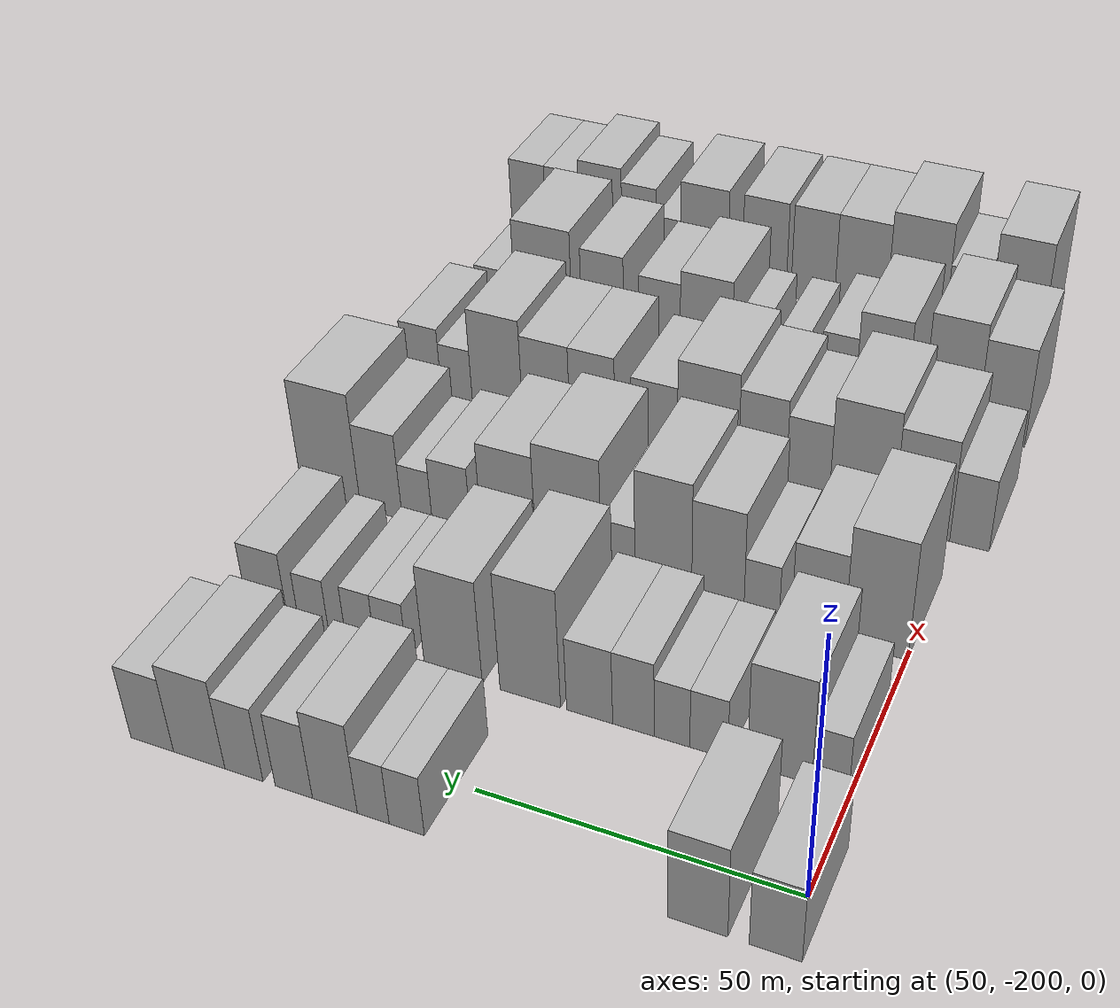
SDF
<sdf version="1.6">
 <world name="default">
  <model name="building_35">
   <static>1</static>
   <pose>50.0000 -198.8769 0 0.000000 0.000000 0.000000</pose>
   <link name="link">
    <pose>0 0 7.50 0 0 0</pose>
    <collision name="collision"><geometry><box><size>20.0000 7.3823 15.0000</size></box></geometry></collision>
    <visual name="visual">
     <cast_shadows>0</cast_shadows>
     <geometry><box><size>20.0000 7.3823 15.0000</size></box></geometry>
     <material>
      <script>
       <uri>model://HANNAS_wall/materials/scripts</uri>
       <uri>model://HANNAS_wall/materials/textures</uri>
       <name>vrc/HANNAS_wall</name>
      </script>
     </material>
    </visual>
   </link>
  </model>
  <model name="building_36">
   <static>1</static>
   <pose>50.0000 -187.9072 0 0.000000 0.000000 0.000000</pose>
   <link name="link">
    <pose>0 0 9.00 0 0 0</pose>
    <collision name="collision"><geometry><box><size>20.0000 8.5571 18.0000</size></box></geometry></collision>
    <visual name="visual">
     <cast_shadows>0</cast_shadows>
     <geometry><box><size>20.0000 8.5571 18.0000</size></box></geometry>
     <material>
      <script>
       <uri>model://HANNAS_wall/materials/scripts</uri>
       <uri>model://HANNAS_wall/materials/textures</uri>
       <name>vrc/HANNAS_wall</name>
      </script>
     </material>
    </visual>
   </link>
  </model>
  <model name="building_37">
   <static>1</static>
   <pose>50.0000 -144.2730 0 0.000000 0.000000 0.000000</pose>
   <link name="link">
    <pose>0 0 6.00 0 0 0</pose>
    <collision name="collision"><geometry><box><size>20.0000 5.5705 12.0000</size></box></geometry></collision>
    <visual name="visual">
     <cast_shadows>0</cast_shadows>
     <geometry><box><size>20.0000 5.5705 12.0000</size></box></geometry>
     <material>
      <script>
       <uri>model://HANNAS_wall/materials/scripts</uri>
       <uri>model://HANNAS_wall/materials/textures</uri>
       <name>vrc/HANNAS_wall</name>
      </script>
     </material>
    </visual>
   </link>
  </model>
  <model name="building_38">
   <static>1</static>
   <pose>50.0000 -138.9354 0 0.000000 0.000000 0.000000</pose>
   <link name="link">
    <pose>0 0 6.00 0 0 0</pose>
    <collision name="collision"><geometry><box><size>20.0000 5.1046 12.0000</size></box></geometry></collision>
    <visual name="visual">
     <cast_shadows>0</cast_shadows>
     <geometry><box><size>20.0000 5.1046 12.0000</size></box></geometry>
     <material>
      <script>
       <uri>model://HANNAS_wall/materials/scripts</uri>
       <uri>model://HANNAS_wall/materials/textures</uri>
       <name>vrc/HANNAS_wall</name>
      </script>
     </material>
    </visual>
   </link>
  </model>
  <model name="building_39">
   <static>1</static>
   <pose>50.0000 -132.7513 0 0.000000 0.000000 0.000000</pose>
   <link name="link">
    <pose>0 0 9.00 0 0 0</pose>
    <collision name="collision"><geometry><box><size>20.0000 7.2637 18.0000</size></box></geometry></collision>
    <visual name="visual">
     <cast_shadows>0</cast_shadows>
     <geometry><box><size>20.0000 7.2637 18.0000</size></box></geometry>
     <material>
      <script>
       <uri>model://HANNAS_wall/materials/scripts</uri>
       <uri>model://HANNAS_wall/materials/textures</uri>
       <name>vrc/HANNAS_wall</name>
      </script>
     </material>
    </visual>
   </link>
  </model>
  <model name="building_40">
   <static>1</static>
   <pose>50.0000 -126.0506 0 0.000000 0.000000 0.000000</pose>
   <link name="link">
    <pose>0 0 7.50 0 0 0</pose>
    <collision name="collision"><geometry><box><size>20.0000 6.1378 15.0000</size></box></geometry></collision>
    <visual name="visual">
     <cast_shadows>0</cast_shadows>
     <geometry><box><size>20.0000 6.1378 15.0000</size></box></geometry>
     <material>
      <script>
       <uri>model://HANNAS_wall/materials/scripts</uri>
       <uri>model://HANNAS_wall/materials/textures</uri>
       <name>vrc/HANNAS_wall</name>
      </script>
     </material>
    </visual>
   </link>
  </model>
  <model name="building_41">
   <static>1</static>
   <pose>50.0000 -117.7873 0 0.000000 0.000000 0.000000</pose>
   <link name="link">
    <pose>0 0 7.50 0 0 0</pose>
    <collision name="collision"><geometry><box><size>20.0000 6.3888 15.0000</size></box></geometry></collision>
    <visual name="visual">
     <cast_shadows>0</cast_shadows>
     <geometry><box><size>20.0000 6.3888 15.0000</size></box></geometry>
     <material>
      <script>
       <uri>model://HANNAS_wall/materials/scripts</uri>
       <uri>model://HANNAS_wall/materials/textures</uri>
       <name>vrc/HANNAS_wall</name>
      </script>
     </material>
    </visual>
   </link>
  </model>
  <model name="building_42">
   <static>1</static>
   <pose>50.0000 -110.2151 0 0.000000 0.000000 0.000000</pose>
   <link name="link">
    <pose>0 0 9.00 0 0 0</pose>
    <collision name="collision"><geometry><box><size>20.0000 8.7557 18.0000</size></box></geometry></collision>
    <visual name="visual">
     <cast_shadows>0</cast_shadows>
     <geometry><box><size>20.0000 8.7557 18.0000</size></box></geometry>
     <material>
      <script>
       <uri>model://HANNAS_wall/materials/scripts</uri>
       <uri>model://HANNAS_wall/materials/textures</uri>
       <name>vrc/HANNAS_wall</name>
      </script>
     </material>
    </visual>
   </link>
  </model>
  <model name="building_43">
   <static>1</static>
   <pose>50.0000 -102.1446 0 0.000000 0.000000 0.000000</pose>
   <link name="link">
    <pose>0 0 7.50 0 0 0</pose>
    <collision name="collision"><geometry><box><size>20.0000 7.3853 15.0000</size></box></geometry></collision>
    <visual name="visual">
     <cast_shadows>0</cast_shadows>
     <geometry><box><size>20.0000 7.3853 15.0000</size></box></geometry>
     <material>
      <script>
       <uri>model://HANNAS_wall/materials/scripts</uri>
       <uri>model://HANNAS_wall/materials/textures</uri>
       <name>vrc/HANNAS_wall</name>
      </script>
     </material>
    </visual>
   </link>
  </model>
  <model name="building_141">
   <static>1</static>
   <pose>79.0000 -197.0301 0 0.000000 0.000000 0.000000</pose>
   <link name="link">
    <pose>0 0 6.00 0 0 0</pose>
    <collision name="collision"><geometry><box><size>20.0000 5.5464 12.0000</size></box></geometry></collision>
    <visual name="visual">
     <cast_shadows>0</cast_shadows>
     <geometry><box><size>20.0000 5.5464 12.0000</size></box></geometry>
     <material>
      <script>
       <uri>model://HANNAS_wall/materials/scripts</uri>
       <uri>model://HANNAS_wall/materials/textures</uri>
       <name>vrc/HANNAS_wall</name>
      </script>
     </material>
    </visual>
   </link>
  </model>
  <model name="building_142">
   <static>1</static>
   <pose>79.0000 -189.3438 0 0.000000 0.000000 0.000000</pose>
   <link name="link">
    <pose>0 0 10.50 0 0 0</pose>
    <collision name="collision"><geometry><box><size>20.0000 9.8264 21.0000</size></box></geometry></collision>
    <visual name="visual">
     <cast_shadows>0</cast_shadows>
     <geometry><box><size>20.0000 9.8264 21.0000</size></box></geometry>
     <material>
      <script>
       <uri>model://HANNAS_wall/materials/scripts</uri>
       <uri>model://HANNAS_wall/materials/textures</uri>
       <name>vrc/HANNAS_wall</name>
      </script>
     </material>
    </visual>
   </link>
  </model>
  <model name="building_143">
   <static>1</static>
   <pose>79.0000 -178.4650 0 0.000000 0.000000 0.000000</pose>
   <link name="link">
    <pose>0 0 6.00 0 0 0</pose>
    <collision name="collision"><geometry><box><size>20.0000 5.9310 12.0000</size></box></geometry></collision>
    <visual name="visual">
     <cast_shadows>0</cast_shadows>
     <geometry><box><size>20.0000 5.9310 12.0000</size></box></geometry>
     <material>
      <script>
       <uri>model://HANNAS_wall/materials/scripts</uri>
       <uri>model://HANNAS_wall/materials/textures</uri>
       <name>vrc/HANNAS_wall</name>
      </script>
     </material>
    </visual>
   </link>
  </model>
  <model name="building_144">
   <static>1</static>
   <pose>79.0000 -172.6783 0 0.000000 0.000000 0.000000</pose>
   <link name="link">
    <pose>0 0 6.00 0 0 0</pose>
    <collision name="collision"><geometry><box><size>20.0000 5.6424 12.0000</size></box></geometry></collision>
    <visual name="visual">
     <cast_shadows>0</cast_shadows>
     <geometry><box><size>20.0000 5.6424 12.0000</size></box></geometry>
     <material>
      <script>
       <uri>model://HANNAS_wall/materials/scripts</uri>
       <uri>model://HANNAS_wall/materials/textures</uri>
       <name>vrc/HANNAS_wall</name>
      </script>
     </material>
    </visual>
   </link>
  </model>
  <model name="building_145">
   <static>1</static>
   <pose>79.0000 -166.5329 0 0.000000 0.000000 0.000000</pose>
   <link name="link">
    <pose>0 0 7.50 0 0 0</pose>
    <collision name="collision"><geometry><box><size>20.0000 6.6484 15.0000</size></box></geometry></collision>
    <visual name="visual">
     <cast_shadows>0</cast_shadows>
     <geometry><box><size>20.0000 6.6484 15.0000</size></box></geometry>
     <material>
      <script>
       <uri>model://HANNAS_wall/materials/scripts</uri>
       <uri>model://HANNAS_wall/materials/textures</uri>
       <name>vrc/HANNAS_wall</name>
      </script>
     </material>
    </visual>
   </link>
  </model>
  <model name="building_146">
   <static>1</static>
   <pose>79.0000 -159.4603 0 0.000000 0.000000 0.000000</pose>
   <link name="link">
    <pose>0 0 7.50 0 0 0</pose>
    <collision name="collision"><geometry><box><size>20.0000 7.4969 15.0000</size></box></geometry></collision>
    <visual name="visual">
     <cast_shadows>0</cast_shadows>
     <geometry><box><size>20.0000 7.4969 15.0000</size></box></geometry>
     <material>
      <script>
       <uri>model://HANNAS_wall/materials/scripts</uri>
       <uri>model://HANNAS_wall/materials/textures</uri>
       <name>vrc/HANNAS_wall</name>
      </script>
     </material>
    </visual>
   </link>
  </model>
  <model name="building_147">
   <static>1</static>
   <pose>79.0000 -149.6871 0 0.000000 0.000000 0.000000</pose>
   <link name="link">
    <pose>0 0 12.00 0 0 0</pose>
    <collision name="collision"><geometry><box><size>20.0000 10.0494 24.0000</size></box></geometry></collision>
    <visual name="visual">
     <cast_shadows>0</cast_shadows>
     <geometry><box><size>20.0000 10.0494 24.0000</size></box></geometry>
     <material>
      <script>
       <uri>model://HANNAS_wall/materials/scripts</uri>
       <uri>model://HANNAS_wall/materials/textures</uri>
       <name>vrc/HANNAS_wall</name>
      </script>
     </material>
    </visual>
   </link>
  </model>
  <model name="building_148">
   <static>1</static>
   <pose>79.0000 -136.7443 0 0.000000 0.000000 0.000000</pose>
   <link name="link">
    <pose>0 0 10.50 0 0 0</pose>
    <collision name="collision"><geometry><box><size>20.0000 9.8362 21.0000</size></box></geometry></collision>
    <visual name="visual">
     <cast_shadows>0</cast_shadows>
     <geometry><box><size>20.0000 9.8362 21.0000</size></box></geometry>
     <material>
      <script>
       <uri>model://HANNAS_wall/materials/scripts</uri>
       <uri>model://HANNAS_wall/materials/textures</uri>
       <name>vrc/HANNAS_wall</name>
      </script>
     </material>
    </visual>
   </link>
  </model>
  <model name="building_149">
   <static>1</static>
   <pose>79.0000 -126.0733 0 0.000000 0.000000 0.000000</pose>
   <link name="link">
    <pose>0 0 6.00 0 0 0</pose>
    <collision name="collision"><geometry><box><size>20.0000 5.5059 12.0000</size></box></geometry></collision>
    <visual name="visual">
     <cast_shadows>0</cast_shadows>
     <geometry><box><size>20.0000 5.5059 12.0000</size></box></geometry>
     <material>
      <script>
       <uri>model://HANNAS_wall/materials/scripts</uri>
       <uri>model://HANNAS_wall/materials/textures</uri>
       <name>vrc/HANNAS_wall</name>
      </script>
     </material>
    </visual>
   </link>
  </model>
  <model name="building_150">
   <static>1</static>
   <pose>79.0000 -120.7283 0 0.000000 0.000000 0.000000</pose>
   <link name="link">
    <pose>0 0 6.00 0 0 0</pose>
    <collision name="collision"><geometry><box><size>20.0000 5.1842 12.0000</size></box></geometry></collision>
    <visual name="visual">
     <cast_shadows>0</cast_shadows>
     <geometry><box><size>20.0000 5.1842 12.0000</size></box></geometry>
     <material>
      <script>
       <uri>model://HANNAS_wall/materials/scripts</uri>
       <uri>model://HANNAS_wall/materials/textures</uri>
       <name>vrc/HANNAS_wall</name>
      </script>
     </material>
    </visual>
   </link>
  </model>
  <model name="building_151">
   <static>1</static>
   <pose>79.0000 -112.4727 0 0.000000 0.000000 0.000000</pose>
   <link name="link">
    <pose>0 0 6.00 0 0 0</pose>
    <collision name="collision"><geometry><box><size>20.0000 5.3269 12.0000</size></box></geometry></collision>
    <visual name="visual">
     <cast_shadows>0</cast_shadows>
     <geometry><box><size>20.0000 5.3269 12.0000</size></box></geometry>
     <material>
      <script>
       <uri>model://HANNAS_wall/materials/scripts</uri>
       <uri>model://HANNAS_wall/materials/textures</uri>
       <name>vrc/HANNAS_wall</name>
      </script>
     </material>
    </visual>
   </link>
  </model>
  <model name="building_152">
   <static>1</static>
   <pose>79.0000 -104.1199 0 0.000000 0.000000 0.000000</pose>
   <link name="link">
    <pose>0 0 7.50 0 0 0</pose>
    <collision name="collision"><geometry><box><size>20.0000 7.3788 15.0000</size></box></geometry></collision>
    <visual name="visual">
     <cast_shadows>0</cast_shadows>
     <geometry><box><size>20.0000 7.3788 15.0000</size></box></geometry>
     <material>
      <script>
       <uri>model://HANNAS_wall/materials/scripts</uri>
       <uri>model://HANNAS_wall/materials/textures</uri>
       <name>vrc/HANNAS_wall</name>
      </script>
     </material>
    </visual>
   </link>
  </model>
  <model name="building_259">
   <static>1</static>
   <pose>108.0000 -195.0807 0 0.000000 0.000000 0.000000</pose>
   <link name="link">
    <pose>0 0 12.00 0 0 0</pose>
    <collision name="collision"><geometry><box><size>20.0000 10.2910 24.0000</size></box></geometry></collision>
    <visual name="visual">
     <cast_shadows>0</cast_shadows>
     <geometry><box><size>20.0000 10.2910 24.0000</size></box></geometry>
     <material>
      <script>
       <uri>model://HANNAS_wall/materials/scripts</uri>
       <uri>model://HANNAS_wall/materials/textures</uri>
       <name>vrc/HANNAS_wall</name>
      </script>
     </material>
    </visual>
   </link>
  </model>
  <model name="building_260">
   <static>1</static>
   <pose>108.0000 -185.5974 0 0.000000 0.000000 0.000000</pose>
   <link name="link">
    <pose>0 0 9.00 0 0 0</pose>
    <collision name="collision"><geometry><box><size>20.0000 8.6754 18.0000</size></box></geometry></collision>
    <visual name="visual">
     <cast_shadows>0</cast_shadows>
     <geometry><box><size>20.0000 8.6754 18.0000</size></box></geometry>
     <material>
      <script>
       <uri>model://HANNAS_wall/materials/scripts</uri>
       <uri>model://HANNAS_wall/materials/textures</uri>
       <name>vrc/HANNAS_wall</name>
      </script>
     </material>
    </visual>
   </link>
  </model>
  <model name="building_261">
   <static>1</static>
   <pose>108.0000 -176.3083 0 0.000000 0.000000 0.000000</pose>
   <link name="link">
    <pose>0 0 6.00 0 0 0</pose>
    <collision name="collision"><geometry><box><size>20.0000 5.9028 12.0000</size></box></geometry></collision>
    <visual name="visual">
     <cast_shadows>0</cast_shadows>
     <geometry><box><size>20.0000 5.9028 12.0000</size></box></geometry>
     <material>
      <script>
       <uri>model://HANNAS_wall/materials/scripts</uri>
       <uri>model://HANNAS_wall/materials/textures</uri>
       <name>vrc/HANNAS_wall</name>
      </script>
     </material>
    </visual>
   </link>
  </model>
  <model name="building_262">
   <static>1</static>
   <pose>108.0000 -168.9257 0 0.000000 0.000000 0.000000</pose>
   <link name="link">
    <pose>0 0 10.50 0 0 0</pose>
    <collision name="collision"><geometry><box><size>20.0000 8.8624 21.0000</size></box></geometry></collision>
    <visual name="visual">
     <cast_shadows>0</cast_shadows>
     <geometry><box><size>20.0000 8.8624 21.0000</size></box></geometry>
     <material>
      <script>
       <uri>model://HANNAS_wall/materials/scripts</uri>
       <uri>model://HANNAS_wall/materials/textures</uri>
       <name>vrc/HANNAS_wall</name>
      </script>
     </material>
    </visual>
   </link>
  </model>
  <model name="building_263">
   <static>1</static>
   <pose>108.0000 -159.6231 0 0.000000 0.000000 0.000000</pose>
   <link name="link">
    <pose>0 0 12.00 0 0 0</pose>
    <collision name="collision"><geometry><box><size>20.0000 9.7428 24.0000</size></box></geometry></collision>
    <visual name="visual">
     <cast_shadows>0</cast_shadows>
     <geometry><box><size>20.0000 9.7428 24.0000</size></box></geometry>
     <material>
      <script>
       <uri>model://HANNAS_wall/materials/scripts</uri>
       <uri>model://HANNAS_wall/materials/textures</uri>
       <name>vrc/HANNAS_wall</name>
      </script>
     </material>
    </visual>
   </link>
  </model>
  <model name="building_264">
   <static>1</static>
   <pose>108.0000 -151.8217 0 0.000000 0.000000 0.000000</pose>
   <link name="link">
    <pose>0 0 6.00 0 0 0</pose>
    <collision name="collision"><geometry><box><size>20.0000 5.8601 12.0000</size></box></geometry></collision>
    <visual name="visual">
     <cast_shadows>0</cast_shadows>
     <geometry><box><size>20.0000 5.8601 12.0000</size></box></geometry>
     <material>
      <script>
       <uri>model://HANNAS_wall/materials/scripts</uri>
       <uri>model://HANNAS_wall/materials/textures</uri>
       <name>vrc/HANNAS_wall</name>
      </script>
     </material>
    </visual>
   </link>
  </model>
  <model name="building_265">
   <static>1</static>
   <pose>108.0000 -143.0457 0 0.000000 0.000000 0.000000</pose>
   <link name="link">
    <pose>0 0 12.00 0 0 0</pose>
    <collision name="collision"><geometry><box><size>20.0000 11.6918 24.0000</size></box></geometry></collision>
    <visual name="visual">
     <cast_shadows>0</cast_shadows>
     <geometry><box><size>20.0000 11.6918 24.0000</size></box></geometry>
     <material>
      <script>
       <uri>model://HANNAS_wall/materials/scripts</uri>
       <uri>model://HANNAS_wall/materials/textures</uri>
       <name>vrc/HANNAS_wall</name>
      </script>
     </material>
    </visual>
   </link>
  </model>
  <model name="building_266">
   <static>1</static>
   <pose>108.0000 -132.2541 0 0.000000 0.000000 0.000000</pose>
   <link name="link">
    <pose>0 0 10.50 0 0 0</pose>
    <collision name="collision"><geometry><box><size>20.0000 9.8915 21.0000</size></box></geometry></collision>
    <visual name="visual">
     <cast_shadows>0</cast_shadows>
     <geometry><box><size>20.0000 9.8915 21.0000</size></box></geometry>
     <material>
      <script>
       <uri>model://HANNAS_wall/materials/scripts</uri>
       <uri>model://HANNAS_wall/materials/textures</uri>
       <name>vrc/HANNAS_wall</name>
      </script>
     </material>
    </visual>
   </link>
  </model>
  <model name="building_267">
   <static>1</static>
   <pose>108.0000 -121.7147 0 0.000000 0.000000 0.000000</pose>
   <link name="link">
    <pose>0 0 7.50 0 0 0</pose>
    <collision name="collision"><geometry><box><size>20.0000 7.1872 15.0000</size></box></geometry></collision>
    <visual name="visual">
     <cast_shadows>0</cast_shadows>
     <geometry><box><size>20.0000 7.1872 15.0000</size></box></geometry>
     <material>
      <script>
       <uri>model://HANNAS_wall/materials/scripts</uri>
       <uri>model://HANNAS_wall/materials/textures</uri>
       <name>vrc/HANNAS_wall</name>
      </script>
     </material>
    </visual>
   </link>
  </model>
  <model name="building_268">
   <static>1</static>
   <pose>108.0000 -115.2483 0 0.000000 0.000000 0.000000</pose>
   <link name="link">
    <pose>0 0 6.00 0 0 0</pose>
    <collision name="collision"><geometry><box><size>20.0000 5.7456 12.0000</size></box></geometry></collision>
    <visual name="visual">
     <cast_shadows>0</cast_shadows>
     <geometry><box><size>20.0000 5.7456 12.0000</size></box></geometry>
     <material>
      <script>
       <uri>model://HANNAS_wall/materials/scripts</uri>
       <uri>model://HANNAS_wall/materials/textures</uri>
       <name>vrc/HANNAS_wall</name>
      </script>
     </material>
    </visual>
   </link>
  </model>
  <model name="building_269">
   <static>1</static>
   <pose>108.0000 -108.3788 0 0.000000 0.000000 0.000000</pose>
   <link name="link">
    <pose>0 0 9.00 0 0 0</pose>
    <collision name="collision"><geometry><box><size>20.0000 7.9934 18.0000</size></box></geometry></collision>
    <visual name="visual">
     <cast_shadows>0</cast_shadows>
     <geometry><box><size>20.0000 7.9934 18.0000</size></box></geometry>
     <material>
      <script>
       <uri>model://HANNAS_wall/materials/scripts</uri>
       <uri>model://HANNAS_wall/materials/textures</uri>
       <name>vrc/HANNAS_wall</name>
      </script>
     </material>
    </visual>
   </link>
  </model>
  <model name="building_270">
   <static>1</static>
   <pose>108.0000 -98.6892 0 0.000000 0.000000 0.000000</pose>
   <link name="link">
    <pose>0 0 12.00 0 0 0</pose>
    <collision name="collision"><geometry><box><size>20.0000 11.3859 24.0000</size></box></geometry></collision>
    <visual name="visual">
     <cast_shadows>0</cast_shadows>
     <geometry><box><size>20.0000 11.3859 24.0000</size></box></geometry>
     <material>
      <script>
       <uri>model://HANNAS_wall/materials/scripts</uri>
       <uri>model://HANNAS_wall/materials/textures</uri>
       <name>vrc/HANNAS_wall</name>
      </script>
     </material>
    </visual>
   </link>
  </model>
  <model name="building_379">
   <static>1</static>
   <pose>137.0000 -202.4666 0 0.000000 0.000000 0.000000</pose>
   <link name="link">
    <pose>0 0 7.50 0 0 0</pose>
    <collision name="collision"><geometry><box><size>20.0000 6.7038 15.0000</size></box></geometry></collision>
    <visual name="visual">
     <cast_shadows>0</cast_shadows>
     <geometry><box><size>20.0000 6.7038 15.0000</size></box></geometry>
     <material>
      <script>
       <uri>model://HANNAS_wall/materials/scripts</uri>
       <uri>model://HANNAS_wall/materials/textures</uri>
       <name>vrc/HANNAS_wall</name>
      </script>
     </material>
    </visual>
   </link>
  </model>
  <model name="building_380">
   <static>1</static>
   <pose>137.0000 -194.2477 0 0.000000 0.000000 0.000000</pose>
   <link name="link">
    <pose>0 0 10.50 0 0 0</pose>
    <collision name="collision"><geometry><box><size>20.0000 9.7340 21.0000</size></box></geometry></collision>
    <visual name="visual">
     <cast_shadows>0</cast_shadows>
     <geometry><box><size>20.0000 9.7340 21.0000</size></box></geometry>
     <material>
      <script>
       <uri>model://HANNAS_wall/materials/scripts</uri>
       <uri>model://HANNAS_wall/materials/textures</uri>
       <name>vrc/HANNAS_wall</name>
      </script>
     </material>
    </visual>
   </link>
  </model>
  <model name="building_381">
   <static>1</static>
   <pose>137.0000 -183.7086 0 0.000000 0.000000 0.000000</pose>
   <link name="link">
    <pose>0 0 12.00 0 0 0</pose>
    <collision name="collision"><geometry><box><size>20.0000 11.3443 24.0000</size></box></geometry></collision>
    <visual name="visual">
     <cast_shadows>0</cast_shadows>
     <geometry><box><size>20.0000 11.3443 24.0000</size></box></geometry>
     <material>
      <script>
       <uri>model://HANNAS_wall/materials/scripts</uri>
       <uri>model://HANNAS_wall/materials/textures</uri>
       <name>vrc/HANNAS_wall</name>
      </script>
     </material>
    </visual>
   </link>
  </model>
  <model name="building_382">
   <static>1</static>
   <pose>137.0000 -174.1762 0 0.000000 0.000000 0.000000</pose>
   <link name="link">
    <pose>0 0 9.00 0 0 0</pose>
    <collision name="collision"><geometry><box><size>20.0000 7.7205 18.0000</size></box></geometry></collision>
    <visual name="visual">
     <cast_shadows>0</cast_shadows>
     <geometry><box><size>20.0000 7.7205 18.0000</size></box></geometry>
     <material>
      <script>
       <uri>model://HANNAS_wall/materials/scripts</uri>
       <uri>model://HANNAS_wall/materials/textures</uri>
       <name>vrc/HANNAS_wall</name>
      </script>
     </material>
    </visual>
   </link>
  </model>
  <model name="building_383">
   <static>1</static>
   <pose>137.0000 -166.0308 0 0.000000 0.000000 0.000000</pose>
   <link name="link">
    <pose>0 0 10.50 0 0 0</pose>
    <collision name="collision"><geometry><box><size>20.0000 8.5702 21.0000</size></box></geometry></collision>
    <visual name="visual">
     <cast_shadows>0</cast_shadows>
     <geometry><box><size>20.0000 8.5702 21.0000</size></box></geometry>
     <material>
      <script>
       <uri>model://HANNAS_wall/materials/scripts</uri>
       <uri>model://HANNAS_wall/materials/textures</uri>
       <name>vrc/HANNAS_wall</name>
      </script>
     </material>
    </visual>
   </link>
  </model>
  <model name="building_384">
   <static>1</static>
   <pose>137.0000 -156.1632 0 0.000000 0.000000 0.000000</pose>
   <link name="link">
    <pose>0 0 12.00 0 0 0</pose>
    <collision name="collision"><geometry><box><size>20.0000 11.1650 24.0000</size></box></geometry></collision>
    <visual name="visual">
     <cast_shadows>0</cast_shadows>
     <geometry><box><size>20.0000 11.1650 24.0000</size></box></geometry>
     <material>
      <script>
       <uri>model://HANNAS_wall/materials/scripts</uri>
       <uri>model://HANNAS_wall/materials/textures</uri>
       <name>vrc/HANNAS_wall</name>
      </script>
     </material>
    </visual>
   </link>
  </model>
  <model name="building_385">
   <static>1</static>
   <pose>137.0000 -146.2747 0 0.000000 0.000000 0.000000</pose>
   <link name="link">
    <pose>0 0 9.00 0 0 0</pose>
    <collision name="collision"><geometry><box><size>20.0000 8.6120 18.0000</size></box></geometry></collision>
    <visual name="visual">
     <cast_shadows>0</cast_shadows>
     <geometry><box><size>20.0000 8.6120 18.0000</size></box></geometry>
     <material>
      <script>
       <uri>model://HANNAS_wall/materials/scripts</uri>
       <uri>model://HANNAS_wall/materials/textures</uri>
       <name>vrc/HANNAS_wall</name>
      </script>
     </material>
    </visual>
   </link>
  </model>
  <model name="building_386">
   <static>1</static>
   <pose>137.0000 -134.6522 0 0.000000 0.000000 0.000000</pose>
   <link name="link">
    <pose>0 0 10.50 0 0 0</pose>
    <collision name="collision"><geometry><box><size>20.0000 8.6332 21.0000</size></box></geometry></collision>
    <visual name="visual">
     <cast_shadows>0</cast_shadows>
     <geometry><box><size>20.0000 8.6332 21.0000</size></box></geometry>
     <material>
      <script>
       <uri>model://HANNAS_wall/materials/scripts</uri>
       <uri>model://HANNAS_wall/materials/textures</uri>
       <name>vrc/HANNAS_wall</name>
      </script>
     </material>
    </visual>
   </link>
  </model>
  <model name="building_387">
   <static>1</static>
   <pose>137.0000 -125.7567 0 0.000000 0.000000 0.000000</pose>
   <link name="link">
    <pose>0 0 10.50 0 0 0</pose>
    <collision name="collision"><geometry><box><size>20.0000 9.1576 21.0000</size></box></geometry></collision>
    <visual name="visual">
     <cast_shadows>0</cast_shadows>
     <geometry><box><size>20.0000 9.1576 21.0000</size></box></geometry>
     <material>
      <script>
       <uri>model://HANNAS_wall/materials/scripts</uri>
       <uri>model://HANNAS_wall/materials/textures</uri>
       <name>vrc/HANNAS_wall</name>
      </script>
     </material>
    </visual>
   </link>
  </model>
  <model name="building_388">
   <static>1</static>
   <pose>137.0000 -116.2139 0 0.000000 0.000000 0.000000</pose>
   <link name="link">
    <pose>0 0 12.00 0 0 0</pose>
    <collision name="collision"><geometry><box><size>20.0000 9.9280 24.0000</size></box></geometry></collision>
    <visual name="visual">
     <cast_shadows>0</cast_shadows>
     <geometry><box><size>20.0000 9.9280 24.0000</size></box></geometry>
     <material>
      <script>
       <uri>model://HANNAS_wall/materials/scripts</uri>
       <uri>model://HANNAS_wall/materials/textures</uri>
       <name>vrc/HANNAS_wall</name>
      </script>
     </material>
    </visual>
   </link>
  </model>
  <model name="building_389">
   <static>1</static>
   <pose>137.0000 -108.1686 0 0.000000 0.000000 0.000000</pose>
   <link name="link">
    <pose>0 0 7.50 0 0 0</pose>
    <collision name="collision"><geometry><box><size>20.0000 6.1628 15.0000</size></box></geometry></collision>
    <visual name="visual">
     <cast_shadows>0</cast_shadows>
     <geometry><box><size>20.0000 6.1628 15.0000</size></box></geometry>
     <material>
      <script>
       <uri>model://HANNAS_wall/materials/scripts</uri>
       <uri>model://HANNAS_wall/materials/textures</uri>
       <name>vrc/HANNAS_wall</name>
      </script>
     </material>
    </visual>
   </link>
  </model>
  <model name="building_390">
   <static>1</static>
   <pose>137.0000 -101.3444 0 0.000000 0.000000 0.000000</pose>
   <link name="link">
    <pose>0 0 9.00 0 0 0</pose>
    <collision name="collision"><geometry><box><size>20.0000 7.4856 18.0000</size></box></geometry></collision>
    <visual name="visual">
     <cast_shadows>0</cast_shadows>
     <geometry><box><size>20.0000 7.4856 18.0000</size></box></geometry>
     <material>
      <script>
       <uri>model://HANNAS_wall/materials/scripts</uri>
       <uri>model://HANNAS_wall/materials/textures</uri>
       <name>vrc/HANNAS_wall</name>
      </script>
     </material>
    </visual>
   </link>
  </model>
  <model name="building_495">
   <static>1</static>
   <pose>166.0000 -200.5444 0 0.000000 0.000000 0.000000</pose>
   <link name="link">
    <pose>0 0 10.50 0 0 0</pose>
    <collision name="collision"><geometry><box><size>20.0000 8.7756 21.0000</size></box></geometry></collision>
    <visual name="visual">
     <cast_shadows>0</cast_shadows>
     <geometry><box><size>20.0000 8.7756 21.0000</size></box></geometry>
     <material>
      <script>
       <uri>model://HANNAS_wall/materials/scripts</uri>
       <uri>model://HANNAS_wall/materials/textures</uri>
       <name>vrc/HANNAS_wall</name>
      </script>
     </material>
    </visual>
   </link>
  </model>
  <model name="building_496">
   <static>1</static>
   <pose>166.0000 -191.1851 0 0.000000 0.000000 0.000000</pose>
   <link name="link">
    <pose>0 0 12.00 0 0 0</pose>
    <collision name="collision"><geometry><box><size>20.0000 9.9430 24.0000</size></box></geometry></collision>
    <visual name="visual">
     <cast_shadows>0</cast_shadows>
     <geometry><box><size>20.0000 9.9430 24.0000</size></box></geometry>
     <material>
      <script>
       <uri>model://HANNAS_wall/materials/scripts</uri>
       <uri>model://HANNAS_wall/materials/textures</uri>
       <name>vrc/HANNAS_wall</name>
      </script>
     </material>
    </visual>
   </link>
  </model>
  <model name="building_497">
   <static>1</static>
   <pose>166.0000 -178.4160 0 0.000000 0.000000 0.000000</pose>
   <link name="link">
    <pose>0 0 10.50 0 0 0</pose>
    <collision name="collision"><geometry><box><size>20.0000 9.5953 21.0000</size></box></geometry></collision>
    <visual name="visual">
     <cast_shadows>0</cast_shadows>
     <geometry><box><size>20.0000 9.5953 21.0000</size></box></geometry>
     <material>
      <script>
       <uri>model://HANNAS_wall/materials/scripts</uri>
       <uri>model://HANNAS_wall/materials/textures</uri>
       <name>vrc/HANNAS_wall</name>
      </script>
     </material>
    </visual>
   </link>
  </model>
  <model name="building_498">
   <static>1</static>
   <pose>166.0000 -170.2714 0 0.000000 0.000000 0.000000</pose>
   <link name="link">
    <pose>0 0 7.50 0 0 0</pose>
    <collision name="collision"><geometry><box><size>20.0000 6.6939 15.0000</size></box></geometry></collision>
    <visual name="visual">
     <cast_shadows>0</cast_shadows>
     <geometry><box><size>20.0000 6.6939 15.0000</size></box></geometry>
     <material>
      <script>
       <uri>model://HANNAS_wall/materials/scripts</uri>
       <uri>model://HANNAS_wall/materials/textures</uri>
       <name>vrc/HANNAS_wall</name>
      </script>
     </material>
    </visual>
   </link>
  </model>
  <model name="building_499">
   <static>1</static>
   <pose>166.0000 -161.1686 0 0.000000 0.000000 0.000000</pose>
   <link name="link">
    <pose>0 0 6.00 0 0 0</pose>
    <collision name="collision"><geometry><box><size>20.0000 5.5116 12.0000</size></box></geometry></collision>
    <visual name="visual">
     <cast_shadows>0</cast_shadows>
     <geometry><box><size>20.0000 5.5116 12.0000</size></box></geometry>
     <material>
      <script>
       <uri>model://HANNAS_wall/materials/scripts</uri>
       <uri>model://HANNAS_wall/materials/textures</uri>
       <name>vrc/HANNAS_wall</name>
      </script>
     </material>
    </visual>
   </link>
  </model>
  <model name="building_500">
   <static>1</static>
   <pose>166.0000 -152.6380 0 0.000000 0.000000 0.000000</pose>
   <link name="link">
    <pose>0 0 6.00 0 0 0</pose>
    <collision name="collision"><geometry><box><size>20.0000 5.5496 12.0000</size></box></geometry></collision>
    <visual name="visual">
     <cast_shadows>0</cast_shadows>
     <geometry><box><size>20.0000 5.5496 12.0000</size></box></geometry>
     <material>
      <script>
       <uri>model://HANNAS_wall/materials/scripts</uri>
       <uri>model://HANNAS_wall/materials/textures</uri>
       <name>vrc/HANNAS_wall</name>
      </script>
     </material>
    </visual>
   </link>
  </model>
  <model name="building_501">
   <static>1</static>
   <pose>166.0000 -144.7552 0 0.000000 0.000000 0.000000</pose>
   <link name="link">
    <pose>0 0 10.50 0 0 0</pose>
    <collision name="collision"><geometry><box><size>20.0000 10.2159 21.0000</size></box></geometry></collision>
    <visual name="visual">
     <cast_shadows>0</cast_shadows>
     <geometry><box><size>20.0000 10.2159 21.0000</size></box></geometry>
     <material>
      <script>
       <uri>model://HANNAS_wall/materials/scripts</uri>
       <uri>model://HANNAS_wall/materials/textures</uri>
       <name>vrc/HANNAS_wall</name>
      </script>
     </material>
    </visual>
   </link>
  </model>
  <model name="building_502">
   <static>1</static>
   <pose>166.0000 -135.5008 0 0.000000 0.000000 0.000000</pose>
   <link name="link">
    <pose>0 0 9.00 0 0 0</pose>
    <collision name="collision"><geometry><box><size>20.0000 8.2929 18.0000</size></box></geometry></collision>
    <visual name="visual">
     <cast_shadows>0</cast_shadows>
     <geometry><box><size>20.0000 8.2929 18.0000</size></box></geometry>
     <material>
      <script>
       <uri>model://HANNAS_wall/materials/scripts</uri>
       <uri>model://HANNAS_wall/materials/textures</uri>
       <name>vrc/HANNAS_wall</name>
      </script>
     </material>
    </visual>
   </link>
  </model>
  <model name="building_503">
   <static>1</static>
   <pose>166.0000 -124.0375 0 0.000000 0.000000 0.000000</pose>
   <link name="link">
    <pose>0 0 10.50 0 0 0</pose>
    <collision name="collision"><geometry><box><size>20.0000 8.6335 21.0000</size></box></geometry></collision>
    <visual name="visual">
     <cast_shadows>0</cast_shadows>
     <geometry><box><size>20.0000 8.6335 21.0000</size></box></geometry>
     <material>
      <script>
       <uri>model://HANNAS_wall/materials/scripts</uri>
       <uri>model://HANNAS_wall/materials/textures</uri>
       <name>vrc/HANNAS_wall</name>
      </script>
     </material>
    </visual>
   </link>
  </model>
  <model name="building_504">
   <static>1</static>
   <pose>166.0000 -111.8074 0 0.000000 0.000000 0.000000</pose>
   <link name="link">
    <pose>0 0 12.00 0 0 0</pose>
    <collision name="collision"><geometry><box><size>20.0000 11.8268 24.0000</size></box></geometry></collision>
    <visual name="visual">
     <cast_shadows>0</cast_shadows>
     <geometry><box><size>20.0000 11.8268 24.0000</size></box></geometry>
     <material>
      <script>
       <uri>model://HANNAS_wall/materials/scripts</uri>
       <uri>model://HANNAS_wall/materials/textures</uri>
       <name>vrc/HANNAS_wall</name>
      </script>
     </material>
    </visual>
   </link>
  </model>
  <model name="building_505">
   <static>1</static>
   <pose>166.0000 -100.2277 0 0.000000 0.000000 0.000000</pose>
   <link name="link">
    <pose>0 0 6.00 0 0 0</pose>
    <collision name="collision"><geometry><box><size>20.0000 5.3325 12.0000</size></box></geometry></collision>
    <visual name="visual">
     <cast_shadows>0</cast_shadows>
     <geometry><box><size>20.0000 5.3325 12.0000</size></box></geometry>
     <material>
      <script>
       <uri>model://HANNAS_wall/materials/scripts</uri>
       <uri>model://HANNAS_wall/materials/textures</uri>
       <name>vrc/HANNAS_wall</name>
      </script>
     </material>
    </visual>
   </link>
  </model>
  <model name="building_608">
   <static>1</static>
   <pose>195.0000 -196.0255 0 0.000000 0.000000 0.000000</pose>
   <link name="link">
    <pose>0 0 12.00 0 0 0</pose>
    <collision name="collision"><geometry><box><size>20.0000 10.2920 24.0000</size></box></geometry></collision>
    <visual name="visual">
     <cast_shadows>0</cast_shadows>
     <geometry><box><size>20.0000 10.2920 24.0000</size></box></geometry>
     <material>
      <script>
       <uri>model://HANNAS_wall/materials/scripts</uri>
       <uri>model://HANNAS_wall/materials/textures</uri>
       <name>vrc/HANNAS_wall</name>
      </script>
     </material>
    </visual>
   </link>
  </model>
  <model name="building_609">
   <static>1</static>
   <pose>195.0000 -186.2378 0 0.000000 0.000000 0.000000</pose>
   <link name="link">
    <pose>0 0 7.50 0 0 0</pose>
    <collision name="collision"><geometry><box><size>20.0000 7.2833 15.0000</size></box></geometry></collision>
    <visual name="visual">
     <cast_shadows>0</cast_shadows>
     <geometry><box><size>20.0000 7.2833 15.0000</size></box></geometry>
     <material>
      <script>
       <uri>model://HANNAS_wall/materials/scripts</uri>
       <uri>model://HANNAS_wall/materials/textures</uri>
       <name>vrc/HANNAS_wall</name>
      </script>
     </material>
    </visual>
   </link>
  </model>
  <model name="building_610">
   <static>1</static>
   <pose>195.0000 -176.7405 0 0.000000 0.000000 0.000000</pose>
   <link name="link">
    <pose>0 0 12.00 0 0 0</pose>
    <collision name="collision"><geometry><box><size>20.0000 11.7112 24.0000</size></box></geometry></collision>
    <visual name="visual">
     <cast_shadows>0</cast_shadows>
     <geometry><box><size>20.0000 11.7112 24.0000</size></box></geometry>
     <material>
      <script>
       <uri>model://HANNAS_wall/materials/scripts</uri>
       <uri>model://HANNAS_wall/materials/textures</uri>
       <name>vrc/HANNAS_wall</name>
      </script>
     </material>
    </visual>
   </link>
  </model>
  <model name="building_611">
   <static>1</static>
   <pose>195.0000 -165.6706 0 0.000000 0.000000 0.000000</pose>
   <link name="link">
    <pose>0 0 10.50 0 0 0</pose>
    <collision name="collision"><geometry><box><size>20.0000 10.4285 21.0000</size></box></geometry></collision>
    <visual name="visual">
     <cast_shadows>0</cast_shadows>
     <geometry><box><size>20.0000 10.4285 21.0000</size></box></geometry>
     <material>
      <script>
       <uri>model://HANNAS_wall/materials/scripts</uri>
       <uri>model://HANNAS_wall/materials/textures</uri>
       <name>vrc/HANNAS_wall</name>
      </script>
     </material>
    </visual>
   </link>
  </model>
  <model name="building_612">
   <static>1</static>
   <pose>195.0000 -156.0035 0 0.000000 0.000000 0.000000</pose>
   <link name="link">
    <pose>0 0 10.50 0 0 0</pose>
    <collision name="collision"><geometry><box><size>20.0000 8.9058 21.0000</size></box></geometry></collision>
    <visual name="visual">
     <cast_shadows>0</cast_shadows>
     <geometry><box><size>20.0000 8.9058 21.0000</size></box></geometry>
     <material>
      <script>
       <uri>model://HANNAS_wall/materials/scripts</uri>
       <uri>model://HANNAS_wall/materials/textures</uri>
       <name>vrc/HANNAS_wall</name>
      </script>
     </material>
    </visual>
   </link>
  </model>
  <model name="building_613">
   <static>1</static>
   <pose>195.0000 -145.9514 0 0.000000 0.000000 0.000000</pose>
   <link name="link">
    <pose>0 0 10.50 0 0 0</pose>
    <collision name="collision"><geometry><box><size>20.0000 9.1984 21.0000</size></box></geometry></collision>
    <visual name="visual">
     <cast_shadows>0</cast_shadows>
     <geometry><box><size>20.0000 9.1984 21.0000</size></box></geometry>
     <material>
      <script>
       <uri>model://HANNAS_wall/materials/scripts</uri>
       <uri>model://HANNAS_wall/materials/textures</uri>
       <name>vrc/HANNAS_wall</name>
      </script>
     </material>
    </visual>
   </link>
  </model>
  <model name="building_614">
   <static>1</static>
   <pose>195.0000 -133.3119 0 0.000000 0.000000 0.000000</pose>
   <link name="link">
    <pose>0 0 10.50 0 0 0</pose>
    <collision name="collision"><geometry><box><size>20.0000 10.0806 21.0000</size></box></geometry></collision>
    <visual name="visual">
     <cast_shadows>0</cast_shadows>
     <geometry><box><size>20.0000 10.0806 21.0000</size></box></geometry>
     <material>
      <script>
       <uri>model://HANNAS_wall/materials/scripts</uri>
       <uri>model://HANNAS_wall/materials/textures</uri>
       <name>vrc/HANNAS_wall</name>
      </script>
     </material>
    </visual>
   </link>
  </model>
  <model name="building_615">
   <static>1</static>
   <pose>195.0000 -125.6940 0 0.000000 0.000000 0.000000</pose>
   <link name="link">
    <pose>0 0 6.00 0 0 0</pose>
    <collision name="collision"><geometry><box><size>20.0000 5.1551 12.0000</size></box></geometry></collision>
    <visual name="visual">
     <cast_shadows>0</cast_shadows>
     <geometry><box><size>20.0000 5.1551 12.0000</size></box></geometry>
     <material>
      <script>
       <uri>model://HANNAS_wall/materials/scripts</uri>
       <uri>model://HANNAS_wall/materials/textures</uri>
       <name>vrc/HANNAS_wall</name>
      </script>
     </material>
    </visual>
   </link>
  </model>
  <model name="building_616">
   <static>1</static>
   <pose>195.0000 -119.3972 0 0.000000 0.000000 0.000000</pose>
   <link name="link">
    <pose>0 0 9.00 0 0 0</pose>
    <collision name="collision"><geometry><box><size>20.0000 7.4385 18.0000</size></box></geometry></collision>
    <visual name="visual">
     <cast_shadows>0</cast_shadows>
     <geometry><box><size>20.0000 7.4385 18.0000</size></box></geometry>
     <material>
      <script>
       <uri>model://HANNAS_wall/materials/scripts</uri>
       <uri>model://HANNAS_wall/materials/textures</uri>
       <name>vrc/HANNAS_wall</name>
      </script>
     </material>
    </visual>
   </link>
  </model>
  <model name="building_617">
   <static>1</static>
   <pose>195.0000 -111.0328 0 0.000000 0.000000 0.000000</pose>
   <link name="link">
    <pose>0 0 10.50 0 0 0</pose>
    <collision name="collision"><geometry><box><size>20.0000 9.2903 21.0000</size></box></geometry></collision>
    <visual name="visual">
     <cast_shadows>0</cast_shadows>
     <geometry><box><size>20.0000 9.2903 21.0000</size></box></geometry>
     <material>
      <script>
       <uri>model://HANNAS_wall/materials/scripts</uri>
       <uri>model://HANNAS_wall/materials/textures</uri>
       <name>vrc/HANNAS_wall</name>
      </script>
     </material>
    </visual>
   </link>
  </model>
  <model name="building_618">
   <static>1</static>
   <pose>195.0000 -102.6356 0 0.000000 0.000000 0.000000</pose>
   <link name="link">
    <pose>0 0 9.00 0 0 0</pose>
    <collision name="collision"><geometry><box><size>20.0000 7.5042 18.0000</size></box></geometry></collision>
    <visual name="visual">
     <cast_shadows>0</cast_shadows>
     <geometry><box><size>20.0000 7.5042 18.0000</size></box></geometry>
     <material>
      <script>
       <uri>model://HANNAS_wall/materials/scripts</uri>
       <uri>model://HANNAS_wall/materials/textures</uri>
       <name>vrc/HANNAS_wall</name>
      </script>
     </material>
    </visual>
   </link>
  </model>
  <model name="building_619">
   <static>1</static>
   <pose>195.0000 -95.0426 0 0.000000 0.000000 0.000000</pose>
   <link name="link">
    <pose>0 0 9.00 0 0 0</pose>
    <collision name="collision"><geometry><box><size>20.0000 7.6818 18.0000</size></box></geometry></collision>
    <visual name="visual">
     <cast_shadows>0</cast_shadows>
     <geometry><box><size>20.0000 7.6818 18.0000</size></box></geometry>
     <material>
      <script>
       <uri>model://HANNAS_wall/materials/scripts</uri>
       <uri>model://HANNAS_wall/materials/textures</uri>
       <name>vrc/HANNAS_wall</name>
      </script>
     </material>
    </visual>
   </link>
  </model>
 </world>
</sdf>
